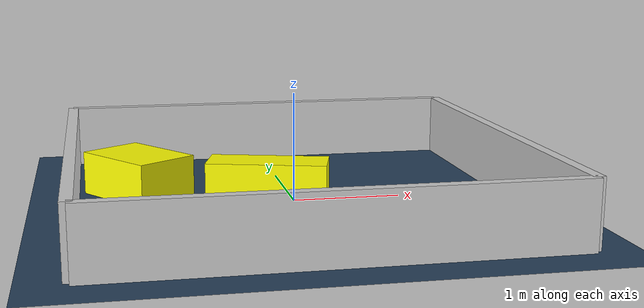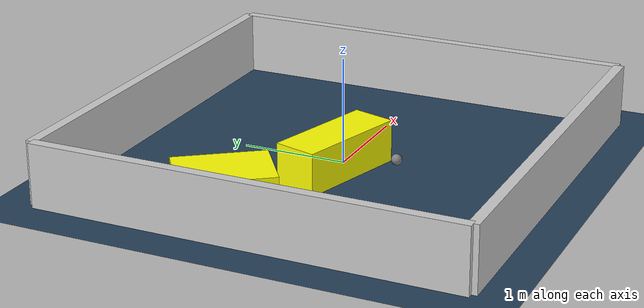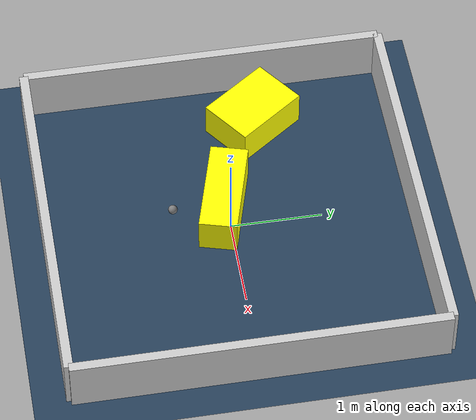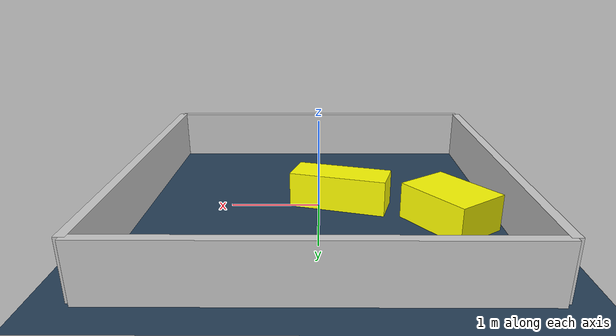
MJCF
<?xml version="1.0" ?>
<mujoco model="generated_environment">
  <option timestep="0.01" integrator="RK4" cone="elliptic"/>
  <default>
    <geom density="1"/>
  </default>
  <asset>
    <texture builtin="gradient" height="3072" rgb1="0.3 0.5 0.7" rgb2="0 0 0" type="skybox" width="512"/>
    <texture builtin="checker" height="300" mark="edge" markrgb="0.8 0.8 0.8" name="groundplane" rgb1="0.2 0.3 0.4" rgb2="0.1 0.2 0.3" type="2d" width="300"/>
    <material name="groundplane" reflectance="0.2" texrepeat="5 5" texture="groundplane" texuniform="true"/>
    <material name="robot" rgba="0.0 1.0 0.0 1"/>
  </asset>
  <worldbody>
    <light dir="0 0 -1" directional="true" pos="0 0 1.5"/>
    <geom condim="4" friction="1.0 0.005 0.001" material="groundplane" name="floor" size="0 0 0.05" type="plane"/>
    <body name="walls">
      <geom name="wall_1" condim="4" pos="-2.0 0.0 0.3" rgba="0.800000011920929 0.800000011920929 0.800000011920929 1.0" size="0.05 2.0 0.3" type="box"/>
      <geom name="wall_2" condim="4" pos="2.0 0.0 0.3" rgba="0.800000011920929 0.800000011920929 0.800000011920929 1.0" size="0.05 2.0 0.3" type="box"/>
      <geom name="wall_3" condim="4" pos="0.0 -2.0 0.3" rgba="0.800000011920929 0.800000011920929 0.800000011920929 1.0" size="2.0 0.05 0.3" type="box"/>
      <geom name="wall_4" condim="4" pos="0.0 2.0 0.3" rgba="0.800000011920929 0.800000011920929 0.800000011920929 1.0" size="2.0 0.05 0.3" type="box"/>
    </body>
    <body name="robot">
      <joint name="joint_x" type="slide" pos="0 0 0" axis="1 0 0"/>
      <joint name="joint_y" type="slide" pos="0 0 0" axis="0 1 0"/>
      <geom name="robot" type="sphere" pos="-0.17923029594094708 -0.6067065787332533 0.2" size="0.05" mass="5." friction="1.0 0.005 0.0001" condim="4"/>
      <site name="sensor_ball"/>
    </body>
    <body name="obstacle_1_movable">
      <geom name="obstacle_1_movable" condim="4" pos="-1.3958891089905647 0.47660944484207723 0.2" euler="0 0 215.7467799865144" friction="1.0 0.005 0.001" rgba="1 1 0 1" size="0.3086468671538231 0.43060319137118563 0.2" type="box" mass="0.1"/>
      <joint type="free"/>
    </body>
    <body name="obstacle_2_movable">
      <geom name="obstacle_2_movable" condim="4" pos="-0.2483935360739411 -0.03630119342140725 0.2" euler="0 0 344.1276704772409" friction="1.0 0.005 0.001" rgba="1 1 0 1" size="0.5465251360779981 0.20786272158076066 0.2" type="box" mass="0.1"/>
      <joint type="free"/>
    </body>
  </worldbody>
  <actuator>
    <motor name="actuator_x" joint="joint_x" gear="1" ctrlrange="-1 1"/>
    <motor name="actuator_y" joint="joint_y" gear="1" ctrlrange="-1 1"/>
  </actuator>
</mujoco>
